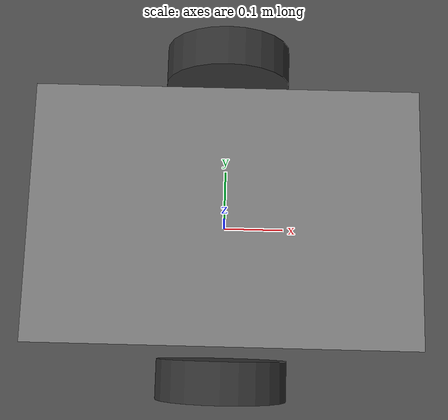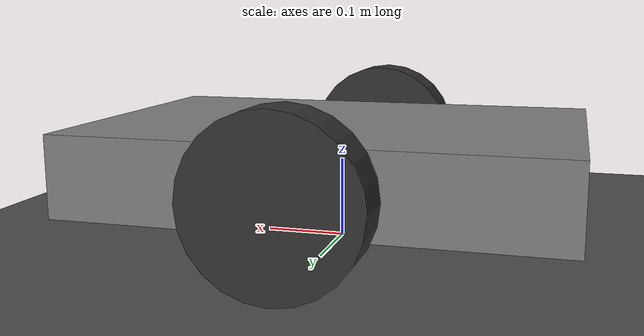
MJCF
<mujoco model="tank_drive_test">
  <compiler angle="radian"/>

  <option gravity="0 0 -9.81" timestep="0.002"/>

  <worldbody>
    <geom name="floor" type="plane" size="10 10 0.1" rgba="0.3 0.3 0.3 1"/>

    <!-- Simple box chassis -->
    <body name="chassis" pos="0 0 0.1">
      <freejoint name="chassis_joint"/>
      <geom name="chassis_box" type="box" size="0.3 0.2 0.05" mass="10" rgba="0.5 0.5 0.5 1"/>

      <!-- Left wheel -->
      <body name="left_wheel" pos="0 0.25 0">
        <joint name="left_drive" type="hinge" axis="0 1 0"/>
        <geom name="left_wheel_geom" type="cylinder" size="0.1 0.03"
              euler="1.5708 0 0" mass="1" rgba="0.2 0.2 0.2 1" friction="1.5 0.005 0.0001"/>
      </body>

      <!-- Right wheel -->
      <body name="right_wheel" pos="0 -0.25 0">
        <joint name="right_drive" type="hinge" axis="0 1 0"/>
        <geom name="right_wheel_geom" type="cylinder" size="0.1 0.03"
              euler="1.5708 0 0" mass="1" rgba="0.2 0.2 0.2 1" friction="1.5 0.005 0.0001"/>
      </body>
    </body>
  </worldbody>

  <actuator>
    <motor name="left_motor" joint="left_drive" gear="1" ctrllimited="true" ctrlrange="-50 50"/>
    <motor name="right_motor" joint="right_drive" gear="1" ctrllimited="true" ctrlrange="-50 50"/>
  </actuator>
</mujoco>
